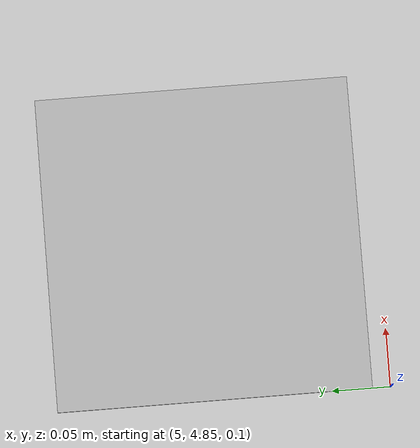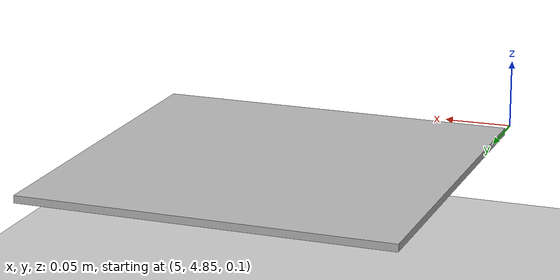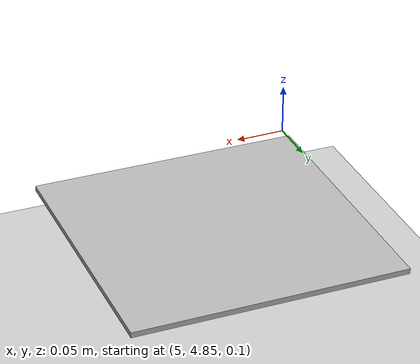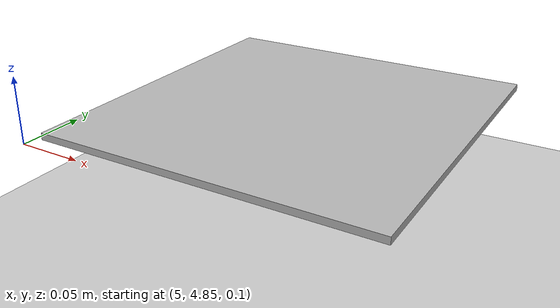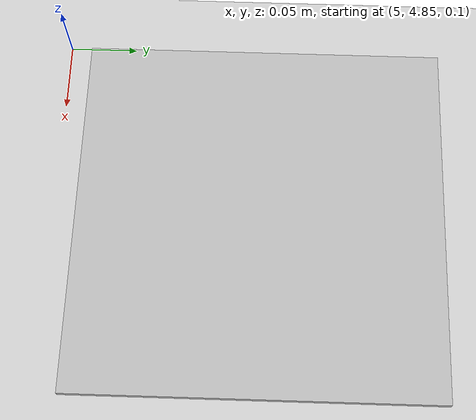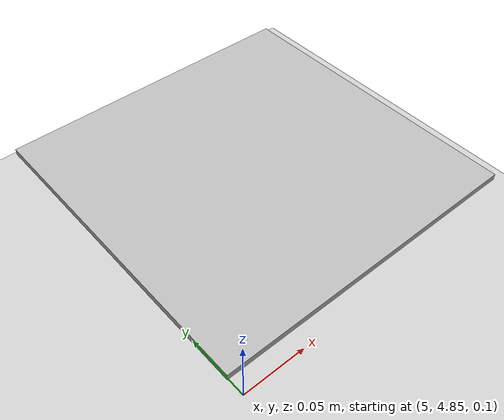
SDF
<?xml version="1.0" ?>
<sdf version="1.5">
  <world name="default">
    <!-- A global light source -->
    <include>
      <uri>model://sun</uri>
    </include>
    <!-- A ground plane -->
    <include>
      <uri>model://ground_plane</uri>
    </include>
    <include>
      <uri>model://asphalt_plane</uri>
    </include>
    <include>
      <uri>model://nested_aruco_4x4_in_5x5</uri>
      <pose>5 5 0.1 0 1.5701 0</pose>
    </include>
    <physics name='default_physics' default='0' type='ode'>
      <gravity>0 0 -9.8066</gravity>
      <ode>
        <solver>
          <type>quick</type>
          <iters>10</iters>
          <sor>1.3</sor>
          <use_dynamic_moi_rescaling>0</use_dynamic_moi_rescaling>
        </solver>
        <constraints>
          <cfm>0</cfm>
          <erp>0.2</erp>
          <contact_max_correcting_vel>100</contact_max_correcting_vel>
          <contact_surface_layer>0.001</contact_surface_layer>
        </constraints>
      </ode>
      <max_step_size>0.004</max_step_size>
      <real_time_factor>1</real_time_factor>
      <real_time_update_rate>250</real_time_update_rate>
      <magnetic_field>6.0e-6 2.3e-5 -4.2e-5</magnetic_field>
    </physics>
  </world>
</sdf>

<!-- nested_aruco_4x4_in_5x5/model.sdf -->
<sdf version="1.6">
  <model name="nested_aruco_4X4_in_5X5">
    <static>true</static>
    <link name="link">
      <visual name="visual">
        <geometry>
          <mesh>
            <uri>model://nested_aruco_4x4_in_5x5/meshes/nested_aruco_4X4_in_5X5.dae</uri>
          <scale>0.538 0.538 0.538</scale></mesh>
        </geometry>
      </visual>
    </link>
  </model>
</sdf>
